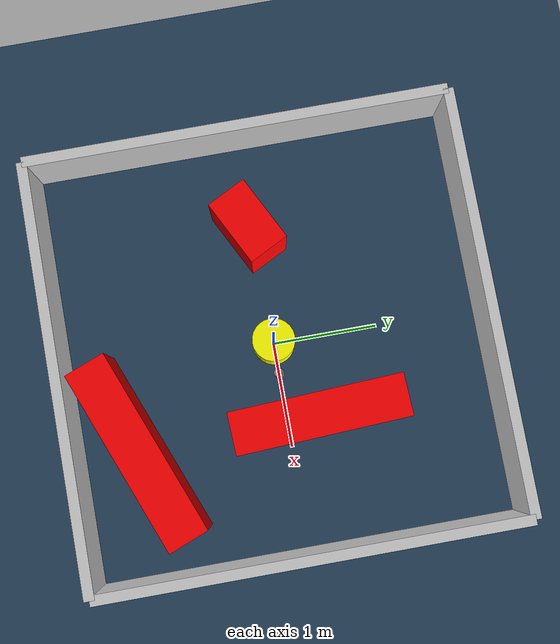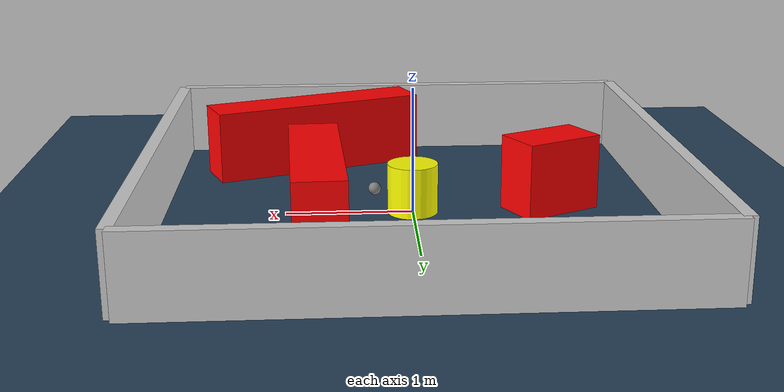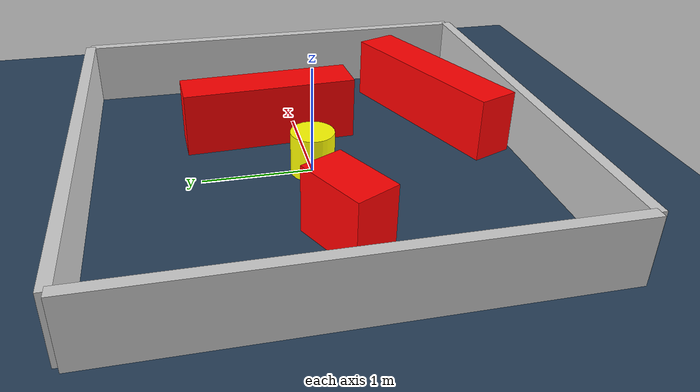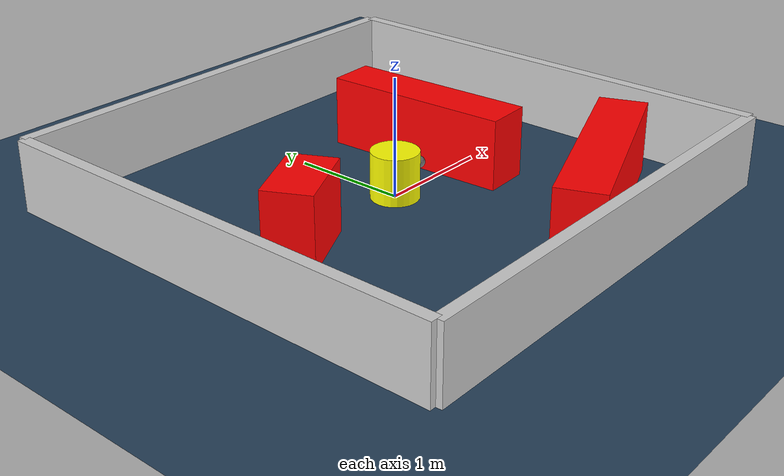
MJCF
<?xml version="1.0" ?>
<mujoco model="generated_environment">
  <option timestep="0.01" integrator="RK4" cone="elliptic"/>
  <default>
    <geom density="1"/>
  </default>
  <asset>
    <texture builtin="gradient" height="3072" rgb1="0.3 0.5 0.7" rgb2="0 0 0" type="skybox" width="512"/>
    <texture builtin="checker" height="300" mark="edge" markrgb="0.8 0.8 0.8" name="groundplane" rgb1="0.2 0.3 0.4" rgb2="0.1 0.2 0.3" type="2d" width="300"/>
    <material name="groundplane" reflectance="0.2" texrepeat="5 5" texture="groundplane" texuniform="true"/>
    <material name="robot" rgba="0.0 1.0 0.0 1"/>
  </asset>
  <worldbody>
    <light dir="0 0 -1" directional="true" pos="0 0 1.5"/>
    <geom condim="4" friction="1.0 0.005 0.001" material="groundplane" name="floor" size="0 0 0.05" type="plane"/>
    <body name="walls">
      <geom name="wall_1" condim="4" pos="-2.0 0.0 0.3" rgba="0.800000011920929 0.800000011920929 0.800000011920929 1.0" size="0.05 2.0 0.3" type="box"/>
      <geom name="wall_2" condim="4" pos="2.0 0.0 0.3" rgba="0.800000011920929 0.800000011920929 0.800000011920929 1.0" size="0.05 2.0 0.3" type="box"/>
      <geom name="wall_3" condim="4" pos="0.0 -2.0 0.3" rgba="0.800000011920929 0.800000011920929 0.800000011920929 1.0" size="2.0 0.05 0.3" type="box"/>
      <geom name="wall_4" condim="4" pos="0.0 2.0 0.3" rgba="0.800000011920929 0.800000011920929 0.800000011920929 1.0" size="2.0 0.05 0.3" type="box"/>
    </body>
    <body name="robot">
      <joint name="joint_x" type="slide" pos="0 0 0" axis="1 0 0"/>
      <joint name="joint_y" type="slide" pos="0 0 0" axis="0 1 0"/>
      <geom name="robot" type="sphere" pos="0.3 0.0 0.2" size="0.05" mass="5." friction="1.0 0.005 0.0001" condim="4" rgba="0.5 0.5 0.5 1.0"/>
      <site name="sensor_ball"/>
    </body>
    <body name="obstacle_movable_1">
      <geom name="obstacle_movable_1" condim="4" pos="0.0 0.0 0.2" euler="0 0 0.0" friction="1.0 0.005 0.001" rgba="1.0 1.0 0.0 1.0" size="0.2 0.2 0.0" type="cylinder" mass="0.1"/>
      <joint type="free"/>
    </body>
    <body name="obstacle_2_static">
      <geom name="obstacle_2_static" condim="4" pos="-1.0987878963136755 -0.047122876136185265 0.3" euler="0 0 206.91065154422114" friction="1.0 0.005 0.001" rgba="1 0 0 1" size="0.3308335238964571 0.2 0.3" type="box"/>
    </body>
    <body name="obstacle_3_static">
      <geom name="obstacle_3_static" condim="4" pos="0.7959777740852343 -1.3899529812283202 0.3" euler="0 0 201.29168849984566" friction="1.0 0.005 0.001" rgba="1 0 0 1" size="0.919529838434205 0.2 0.3" type="box"/>
    </body>
    <body name="obstacle_4_static">
      <geom name="obstacle_4_static" condim="4" pos="0.749141524364981 0.28879903144447483 0.3" euler="0 0 272.70980970943816" friction="1.0 0.005 0.001" rgba="1 0 0 1" size="0.8134568008414849 0.2 0.3" type="box"/>
    </body>
  </worldbody>
  <actuator>
    <motor name="actuator_x" joint="joint_x" gear="1" ctrlrange="-1 1"/>
    <motor name="actuator_y" joint="joint_y" gear="1" ctrlrange="-1 1"/>
  </actuator>
</mujoco>
